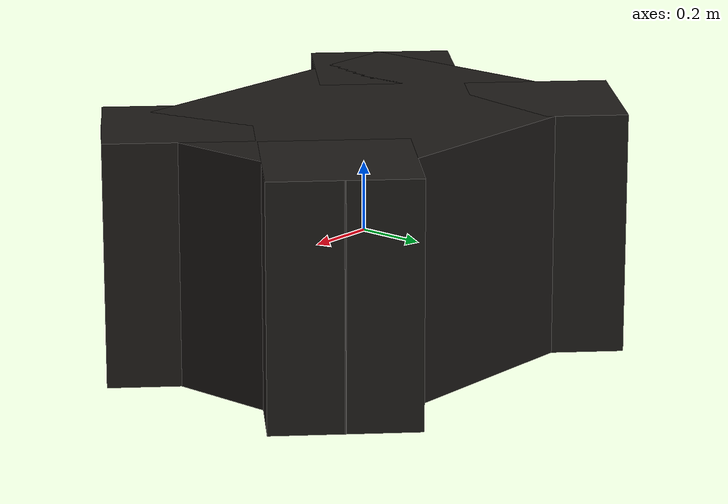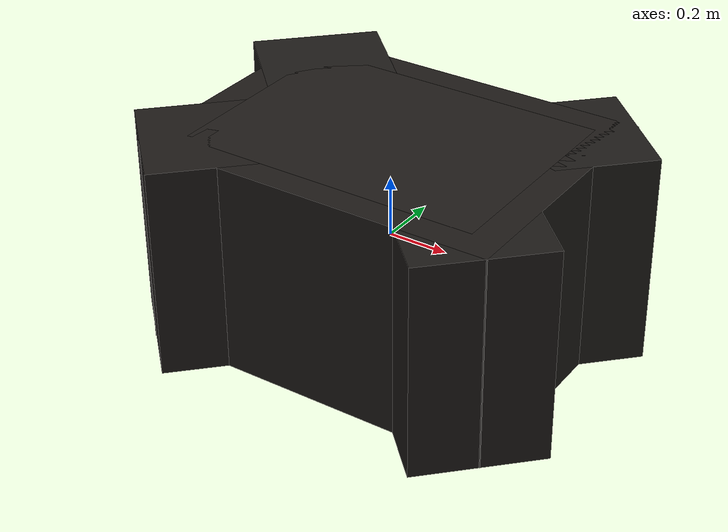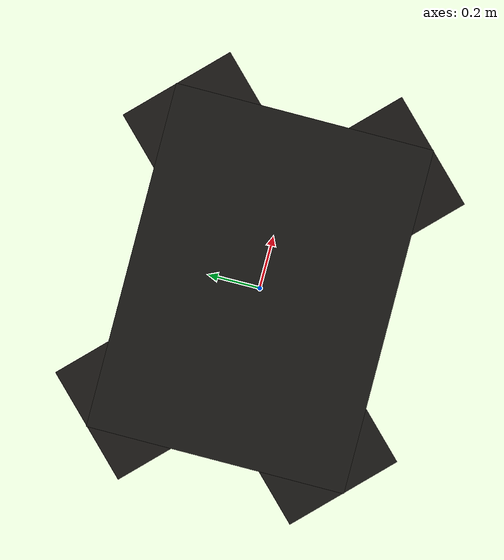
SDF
<?xml version="1.0" ?>
<sdf version="1.9">
  <model name="lunar_boulder">

    <!-- Boulder is quasi-static once settled; not constrained to be static
         so it can be displaced by rover contact -->
    <static>false</static>

    <link name="boulder_link">

      <inertial>
        <mass>2170.0</mass>
        <!-- Inertia of approximate ellipsoid: semi-axes 0.70, 0.55, 0.45 m -->
        <!-- Ixx = (1/5) * m * (b^2 + c^2) = 0.2 * 2170 * (0.3025 + 0.2025) = 219.2 -->
        <!-- Iyy = (1/5) * m * (a^2 + c^2) = 0.2 * 2170 * (0.49   + 0.2025) = 303.5 -->
        <!-- Izz = (1/5) * m * (a^2 + b^2) = 0.2 * 2170 * (0.49   + 0.3025) = 344.5 -->
        <inertia>
          <ixx>219.2</ixx>
          <ixy>0.0</ixy>
          <ixz>0.0</ixz>
          <iyy>303.5</iyy>
          <iyz>0.0</iyz>
          <izz>344.5</izz>
        </inertia>
        <pose>0 0 0 0 0 0</pose>
      </inertial>

      <!-- Primary body: 1.2m × 0.90m × 0.70m -->
      <collision name="col_main">
        <pose>0 0 0 0 0 0</pose>
        <geometry>
          <box>
            <size>1.20 0.90 0.70</size>
          </box>
        </geometry>
        <surface>
          <friction>
            <ode>
              <!-- Regolith-on-basalt friction (Carrier et al. 1991) -->
              <mu>0.70</mu>
              <mu2>0.65</mu2>
              <fdir1>0 0 0</fdir1>
              <slip1>0.0</slip1>
              <slip2>0.0</slip2>
            </ode>
            <bullet>
              <friction>0.70</friction>
              <friction2>0.65</friction2>
              <rolling_friction>0.05</rolling_friction>
            </bullet>
            <torsional>
              <coefficient>0.001</coefficient>
              <use_patch_radius>true</use_patch_radius>
              <patch_radius>0.1</patch_radius>
              <surface_radius>0.6</surface_radius>
              <ode>
                <slip>1e-4</slip>
              </ode>
            </torsional>
          </friction>
          <bounce>
            <!-- Basalt is not very elastic; low restitution -->
            <restitution_coefficient>0.03</restitution_coefficient>
            <threshold>100000</threshold>
          </bounce>
          <contact>
            <ode>
              <!-- Stiff contact for rock -->
              <soft_cfm>1e-6</soft_cfm>
              <soft_erp>0.2</soft_erp>
              <kp>5e7</kp>
              <kd>500</kd>
              <max_vel>0.5</max_vel>
              <min_depth>0.0005</min_depth>
            </ode>
          </contact>
        </surface>
      </collision>

      <!-- Chamfer: front-right edge (45° diagonal, reduce corner sharpness) -->
      <collision name="col_chamfer_fr">
        <pose>0.45 0.30 0 0 0 0.785398</pose>
        <geometry>
          <box>
            <size>0.42 0.42 0.70</size>
          </box>
        </geometry>
        <surface>
          <friction>
            <ode><mu>0.70</mu><mu2>0.65</mu2></ode>
          </friction>
        </surface>
      </collision>

      <!-- Chamfer: front-left edge -->
      <collision name="col_chamfer_fl">
        <pose>0.45 -0.30 0 0 0 0.785398</pose>
        <geometry>
          <box>
            <size>0.42 0.42 0.70</size>
          </box>
        </geometry>
        <surface>
          <friction>
            <ode><mu>0.70</mu><mu2>0.65</mu2></ode>
          </friction>
        </surface>
      </collision>

      <!-- Chamfer: rear-right edge -->
      <collision name="col_chamfer_rr">
        <pose>-0.45 0.30 0 0 0 0.785398</pose>
        <geometry>
          <box>
            <size>0.42 0.42 0.70</size>
          </box>
        </geometry>
        <surface>
          <friction>
            <ode><mu>0.70</mu><mu2>0.65</mu2></ode>
          </friction>
        </surface>
      </collision>

      <!-- Chamfer: rear-left edge -->
      <collision name="col_chamfer_rl">
        <pose>-0.45 -0.30 0 0 0 0.785398</pose>
        <geometry>
          <box>
            <size>0.42 0.42 0.70</size>
          </box>
        </geometry>
        <surface>
          <friction>
            <ode><mu>0.70</mu><mu2>0.65</mu2></ode>
          </friction>
        </surface>
      </collision>

      <!-- Top/bottom rounding: two thinner boxes in Z -->
      <collision name="col_top_round">
        <pose>0 0 0.28 0 0 0</pose>
        <geometry>
          <box>
            <size>1.0 0.72 0.14</size>
          </box>
        </geometry>
        <surface>
          <friction>
            <ode><mu>0.70</mu><mu2>0.65</mu2></ode>
          </friction>
        </surface>
      </collision>

      <collision name="col_bot_round">
        <pose>0 0 -0.28 0 0 0</pose>
        <geometry>
          <box>
            <size>1.0 0.72 0.14</size>
          </box>
        </geometry>
        <surface>
          <friction>
            <ode><mu>0.70</mu><mu2>0.65</mu2></ode>
          </friction>
        </surface>
      </collision>

      <visual name="vis_main">
        <pose>0 0 0 0 0 0</pose>
        <geometry>
          <box>
            <size>1.20 0.90 0.70</size>
          </box>
        </geometry>
        <material>
          <!-- Regolith-coated basalt: dark, slightly warm grey -->
          <ambient>0.07 0.065 0.060 1</ambient>
          <diffuse>0.11 0.100 0.090 1</diffuse>
          <specular>0.015 0.012 0.010 1</specular>
          <emissive>0.0 0.0 0.0 1</emissive>
        </material>
        <laser_retro>0.1</laser_retro>  <!-- LiDAR reflectance: low for dark basalt -->
      </visual>

      <visual name="vis_chamfer_fr">
        <pose>0.45 0.30 0 0 0 0.785398</pose>
        <geometry>
          <box>
            <size>0.42 0.42 0.70</size>
          </box>
        </geometry>
        <material>
          <ambient>0.072 0.067 0.062 1</ambient>
          <diffuse>0.112 0.102 0.092 1</diffuse>
          <specular>0.016 0.013 0.011 1</specular>
        </material>
      </visual>

      <visual name="vis_chamfer_fl">
        <pose>0.45 -0.30 0 0 0 0.785398</pose>
        <geometry>
          <box>
            <size>0.42 0.42 0.70</size>
          </box>
        </geometry>
        <material>
          <ambient>0.068 0.063 0.058 1</ambient>
          <diffuse>0.108 0.098 0.088 1</diffuse>
          <specular>0.014 0.011 0.009 1</specular>
        </material>
      </visual>

      <visual name="vis_chamfer_rr">
        <pose>-0.45 0.30 0 0 0 0.785398</pose>
        <geometry>
          <box>
            <size>0.42 0.42 0.70</size>
          </box>
        </geometry>
        <material>
          <ambient>0.073 0.068 0.063 1</ambient>
          <diffuse>0.113 0.103 0.093 1</diffuse>
          <specular>0.015 0.012 0.010 1</specular>
        </material>
      </visual>

      <visual name="vis_chamfer_rl">
        <pose>-0.45 -0.30 0 0 0 0.785398</pose>
        <geometry>
          <box>
            <size>0.42 0.42 0.70</size>
          </box>
        </geometry>
        <material>
          <ambient>0.070 0.065 0.060 1</ambient>
          <diffuse>0.110 0.100 0.090 1</diffuse>
          <specular>0.014 0.011 0.009 1</specular>
        </material>
      </visual>

      <visual name="vis_top">
        <pose>0 0 0.28 0 0 0</pose>
        <geometry>
          <box>
            <size>1.0 0.72 0.14</size>
          </box>
        </geometry>
        <material>
          <ambient>0.075 0.070 0.065 1</ambient>
          <diffuse>0.115 0.105 0.095 1</diffuse>
          <specular>0.018 0.015 0.013 1</specular>
        </material>
      </visual>

      <visual name="vis_bottom">
        <pose>0 0 -0.28 0 0 0</pose>
        <geometry>
          <box>
            <size>1.0 0.72 0.14</size>
          </box>
        </geometry>
        <material>
          <ambient>0.065 0.060 0.055 1</ambient>
          <diffuse>0.105 0.095 0.085 1</diffuse>
          <specular>0.013 0.010 0.008 1</specular>
        </material>
      </visual>

      <!-- Self-collide disabled for performance: boulder-boulder interactions
           are rare and expensive -->
      <self_collide>false</self_collide>

      <!-- Enable wind: false (vacuum) -->
      <enable_wind>false</enable_wind>

    </link>

  </model>
</sdf>
